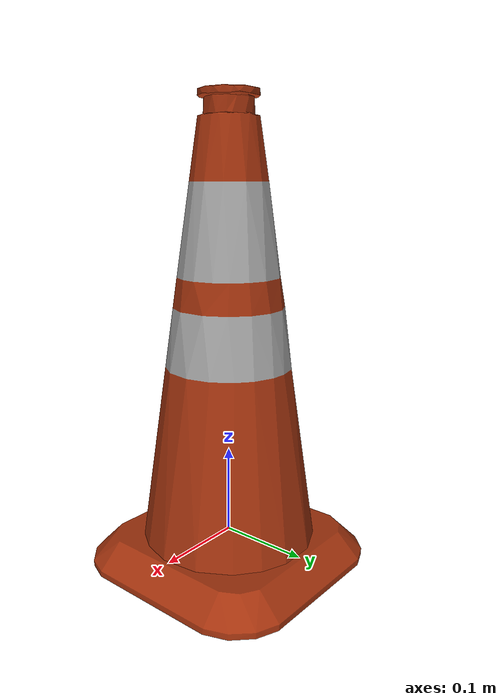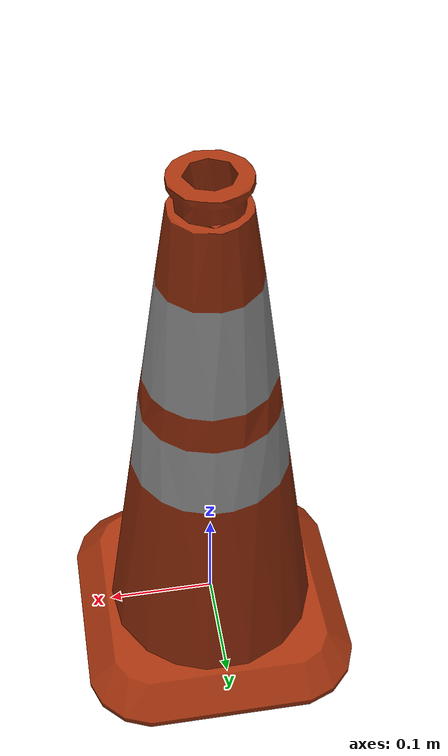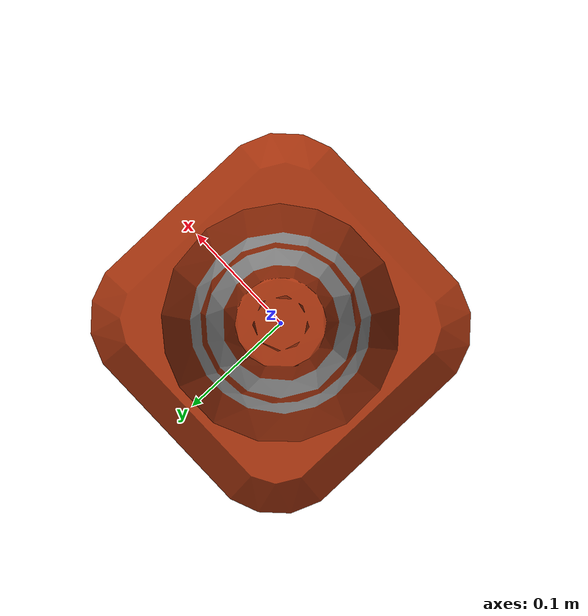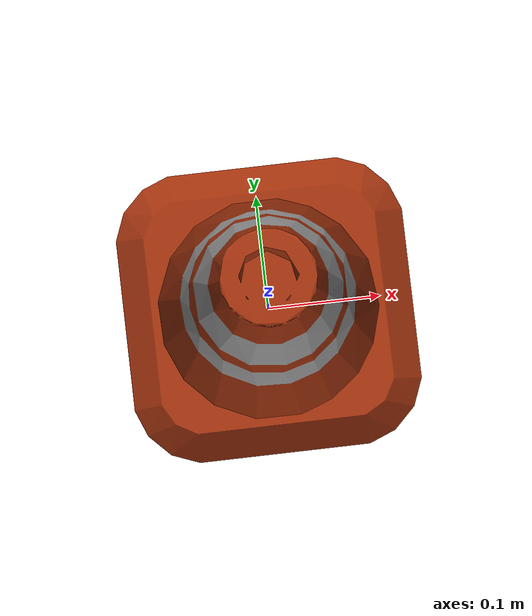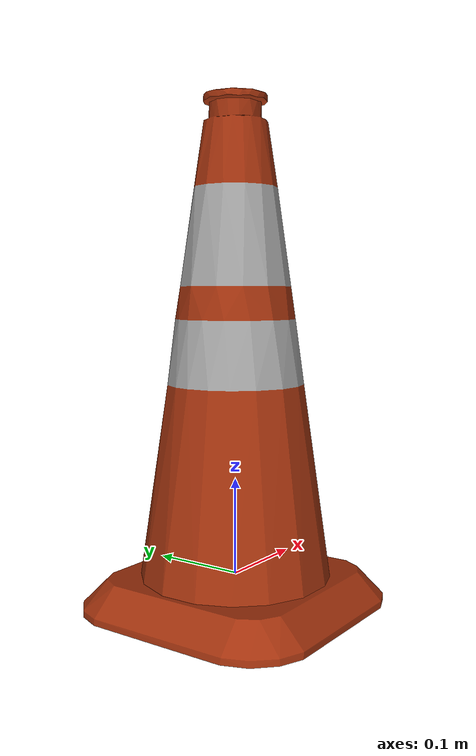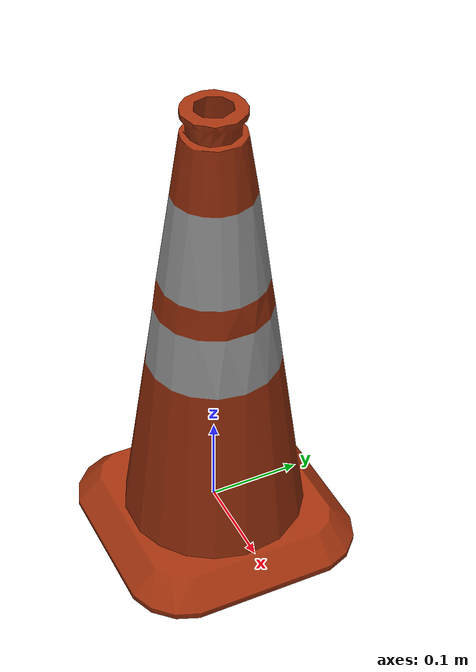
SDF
<?xml version='1.0'?>
<sdf version='1.4'>
  <model name="cone_orange_big">
    <link name="link">
      <collision name="collision">
        <geometry>
            <box>
              <size> 0.285 0.285 0.505 </size>
            </box>
        </geometry>
      </collision>
      <visual name="visual">
        <geometry>
          <mesh>
            <uri>model://simulator_description/meshes/cone/cone_orange_big.dae</uri>
            <scale>1 1 1</scale>
          </mesh>
        </geometry>
      </visual>
    </link>
  </model>
</sdf>
